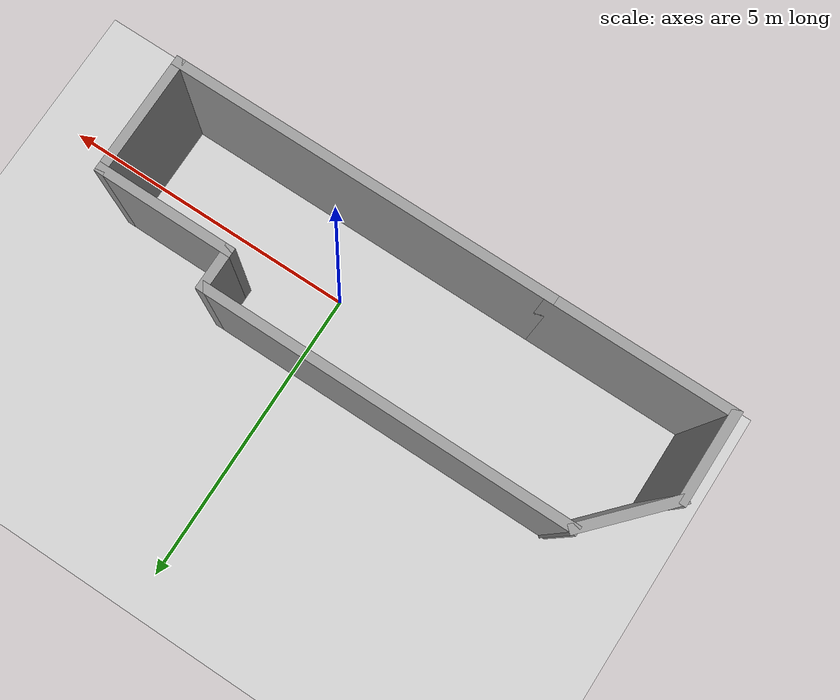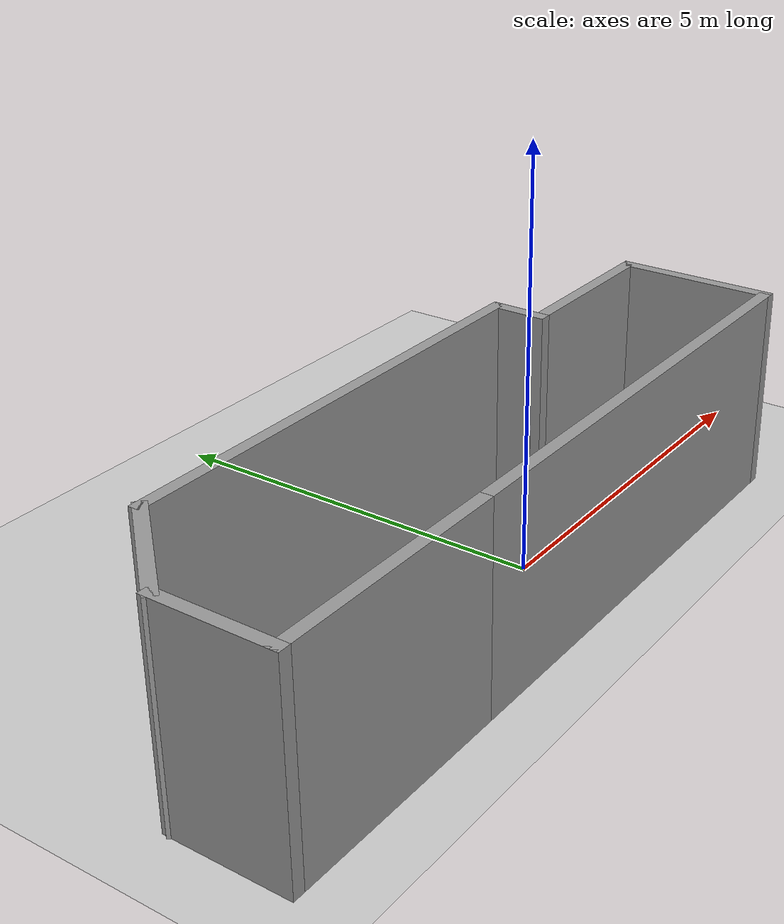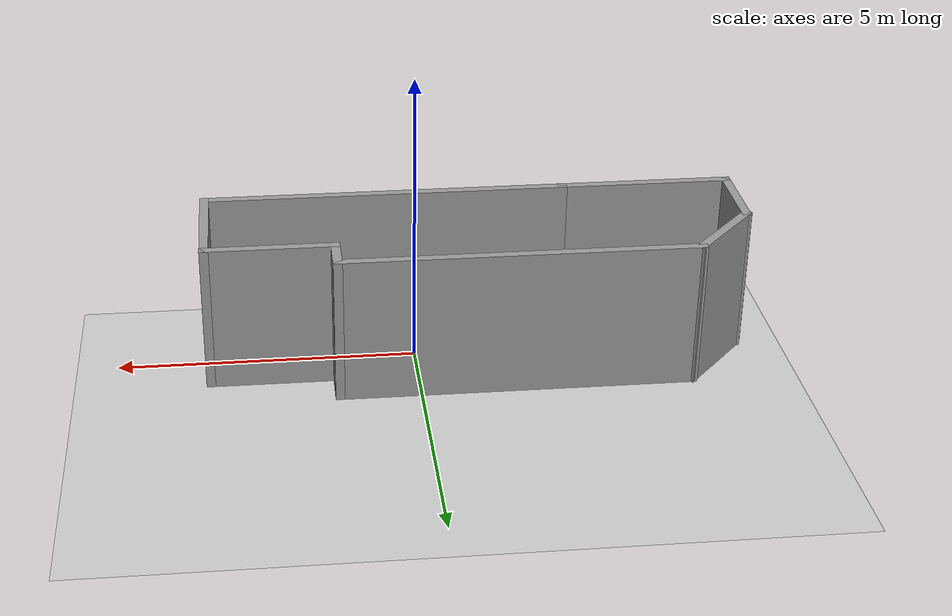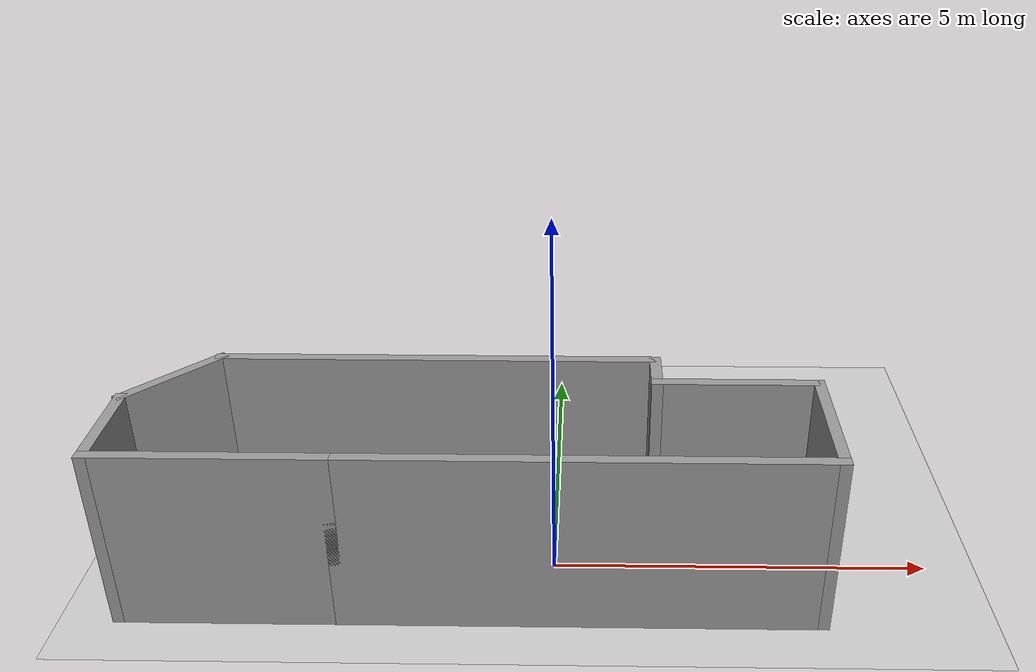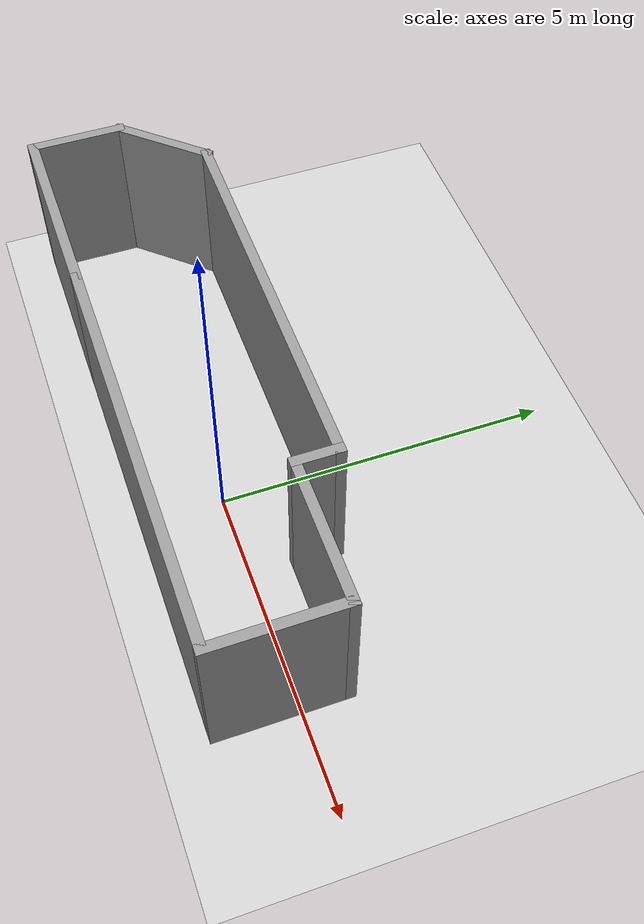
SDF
<sdf version="1.6">
 <world name="default">
  <light name="sun" type="directional">
   <pose>0 0 10 0 -0 0</pose>
   <diffuse>0.8 0.8 0.8 1</diffuse>
   <specular>0.2 0.2 0.2 1</specular>
   <attenuation>
    <range>1000</range>
    <constant>0.9</constant>
    <linear>0.01</linear>
    <quadratic>0.001</quadratic>
   </attenuation>
   <direction>-0.5 0.1 -0.9</direction>
  </light>
  <model name="ground_plane">
   <static>1</static>
   <link name="link">
    <collision name="collision">
     <geometry><plane><normal>0 0 1</normal><size>100 100</size></plane></geometry>
     <surface>
      <contact><collide_bitmask>65535</collide_bitmask></contact>
      <friction><ode><mu>100</mu><mu2>50</mu2></ode></friction>
     </surface>
    </collision>
    <visual name="visual">
     <cast_shadows>0</cast_shadows>
     <geometry><plane><normal>0 0 1</normal><size>100 100</size></plane></geometry>
     <material>
      <script><uri>file://media/materials/scripts/gazebo.material</uri><name>Gazebo/Grey</name></script>
     </material>
    </visual>
   </link>
  </model>
  <gravity>0 0 -9.8</gravity>
  <magnetic_field>6e-06 2.3e-05 -4.2e-05</magnetic_field>
  <atmosphere type="adiabatic"/>
  <physics name="default_physics" default="0" type="ode">
   <max_step_size>0.001</max_step_size>
   <real_time_factor>1</real_time_factor>
   <real_time_update_rate>1000</real_time_update_rate>
  </physics>
  <scene><ambient>0.4 0.4 0.4 1</ambient><background>0.7 0.7 0.7 1</background><shadows>1</shadows></scene>
  <audio><device>default</device></audio>
  <spherical_coordinates>
   <surface_model>EARTH_WGS84</surface_model>
   <latitude_deg>0</latitude_deg>
   <longitude_deg>0</longitude_deg>
   <elevation>0</elevation>
   <heading_deg>0</heading_deg>
  </spherical_coordinates>
  <model name="test_world">
   <pose>-1.05189 0.065709 0 0 -0 0</pose>
   <link name="Wall_0">
    <collision name="Wall_0_Collision">
     <geometry><box><size>1.5 0.15 2.5</size></box></geometry>
     <pose>0 0 1.25 0 -0 0</pose>
    </collision>
    <visual name="Wall_0_Visual">
     <pose>0 0 1.25 0 -0 0</pose>
     <geometry><box><size>1.5 0.15 2.5</size></box></geometry>
     <material>
      <script><uri>file://media/materials/scripts/gazebo.material</uri><name>Gazebo/Grey</name></script>
      <ambient>1 1 1 1</ambient>
     </material>
     <meta><layer>0</layer></meta>
    </visual>
    <pose>-4.45953 -0.565473 0 0 -0 -1.5708</pose>
   </link>
   <link name="Wall_1">
    <collision name="Wall_1_Collision">
     <geometry><box><size>3 0.15 2.5</size></box></geometry>
     <pose>0 0 1.25 0 -0 0</pose>
    </collision>
    <visual name="Wall_1_Visual">
     <pose>0 0 1.25 0 -0 0</pose>
     <geometry><box><size>3 0.15 2.5</size></box></geometry>
     <material>
      <script><uri>file://media/materials/scripts/gazebo.material</uri><name>Gazebo/Grey</name></script>
      <ambient>1 1 1 1</ambient>
     </material>
     <meta><layer>0</layer></meta>
    </visual>
    <pose>-3.03453 -1.24047 0 0 -0 0</pose>
   </link>
   <link name="Wall_2">
    <collision name="Wall_2_Collision">
     <geometry><box><size>6.25 0.15 2.5</size></box></geometry>
     <pose>0 0 1.25 0 -0 0</pose>
    </collision>
    <visual name="Wall_2_Visual">
     <pose>0 0 1.25 0 -0 0</pose>
     <geometry><box><size>6.25 0.15 2.5</size></box></geometry>
     <material>
      <script><uri>file://media/materials/scripts/gazebo.material</uri><name>Gazebo/Grey</name></script>
      <ambient>1 1 1 1</ambient>
     </material>
     <meta><layer>0</layer></meta>
    </visual>
    <pose>1.44047 -1.24047 0 0 -0 0</pose>
   </link>
   <link name="Wall_3">
    <collision name="Wall_3_Collision">
     <geometry><box><size>2 0.15 2.5</size></box></geometry>
     <pose>0 0 1.25 0 -0 0</pose>
    </collision>
    <visual name="Wall_3_Visual">
     <pose>0 0 1.25 0 -0 0</pose>
     <geometry><box><size>2 0.15 2.5</size></box></geometry>
     <material>
      <script><uri>file://media/materials/scripts/gazebo.material</uri><name>Gazebo/Grey</name></script>
      <ambient>1 1 1 1</ambient>
     </material>
     <meta><layer>0</layer></meta>
    </visual>
    <pose>4.49047 -0.315473 0 0 -0 1.5708</pose>
   </link>
   <link name="Wall_4">
    <collision name="Wall_4_Collision">
     <geometry><box><size>2.25 0.15 2.5</size></box></geometry>
     <pose>0 0 1.25 0 -0 0</pose>
    </collision>
    <visual name="Wall_4_Visual">
     <pose>0 0 1.25 0 -0 0</pose>
     <geometry><box><size>2.25 0.15 2.5</size></box></geometry>
     <material>
      <script><uri>file://media/materials/scripts/gazebo.material</uri><name>Gazebo/Grey</name></script>
      <ambient>1 1 1 1</ambient>
     </material>
     <meta><layer>0</layer></meta>
    </visual>
    <pose>3.44047 0.609527 0 0 -0 3.14159</pose>
   </link>
   <link name="Wall_5">
    <collision name="Wall_5_Collision">
     <geometry><box><size>0.75 0.15 2.5</size></box></geometry>
     <pose>0 0 1.25 0 -0 0</pose>
    </collision>
    <visual name="Wall_5_Visual">
     <pose>0 0 1.25 0 -0 0</pose>
     <geometry><box><size>0.75 0.15 2.5</size></box></geometry>
     <material>
      <script><uri>file://media/materials/scripts/gazebo.material</uri><name>Gazebo/Grey</name></script>
      <ambient>1 1 1 1</ambient>
     </material>
     <meta><layer>0</layer></meta>
    </visual>
    <pose>2.39047 0.909527 0 0 -0 1.5708</pose>
   </link>
   <link name="Wall_6">
    <collision name="Wall_6_Collision">
     <geometry><box><size>6 0.15 2.5</size></box></geometry>
     <pose>0 0 1.25 0 -0 0</pose>
    </collision>
    <visual name="Wall_6_Visual">
     <pose>0 0 1.25 0 -0 0</pose>
     <geometry><box><size>6 0.15 2.5</size></box></geometry>
     <material>
      <script><uri>file://media/materials/scripts/gazebo.material</uri><name>Gazebo/Grey</name></script>
      <ambient>1 1 1 1</ambient>
     </material>
     <meta><layer>0</layer></meta>
    </visual>
    <pose>-0.534527 1.20953 0 0 -0 3.14159</pose>
   </link>
   <link name="Wall_7">
    <collision name="Wall_7_Collision">
     <geometry><box><size>1.63661 0.15 2.5</size></box></geometry>
     <pose>0 0 1.25 0 -0 0</pose>
    </collision>
    <visual name="Wall_7_Visual">
     <pose>0 0 1.25 0 -0 0</pose>
     <geometry><box><size>1.63661 0.15 2.5</size></box></geometry>
     <material>
      <script><uri>file://media/materials/scripts/gazebo.material</uri><name>Gazebo/Grey</name></script>
      <ambient>1 1 1 1</ambient>
     </material>
     <meta><layer>0</layer></meta>
    </visual>
    <pose>-3.95953 0.659527 0 0 -0 -2.30861</pose>
   </link>
   <static>1</static>
  </model>
  <light name="user_point_light_0" type="point">
   <pose>-3.07504 -1.54657 1 0 -0 0</pose>
   <diffuse>0.5 0.5 0.5 1</diffuse>
   <specular>0.1 0.1 0.1 1</specular>
   <attenuation>
    <range>20</range>
    <constant>0.5</constant>
    <linear>0.01</linear>
    <quadratic>0.001</quadratic>
   </attenuation>
   <cast_shadows>0</cast_shadows>
   <direction>0 0 -1</direction>
  </light>
  <light name="user_spot_light_0" type="spot">
   <pose>2.3651 -1.28544 1 0 -0 0</pose>
   <diffuse>0.5 0.5 0.5 1</diffuse>
   <specular>0.1 0.1 0.1 1</specular>
   <direction>0 0 -1</direction>
   <attenuation>
    <range>20</range>
    <constant>0.5</constant>
    <linear>0.01</linear>
    <quadratic>0.001</quadratic>
   </attenuation>
   <cast_shadows>0</cast_shadows>
   <spot><inner_angle>0.6</inner_angle><outer_angle>1</outer_angle><falloff>1</falloff></spot>
  </light>
 </world>
</sdf>
